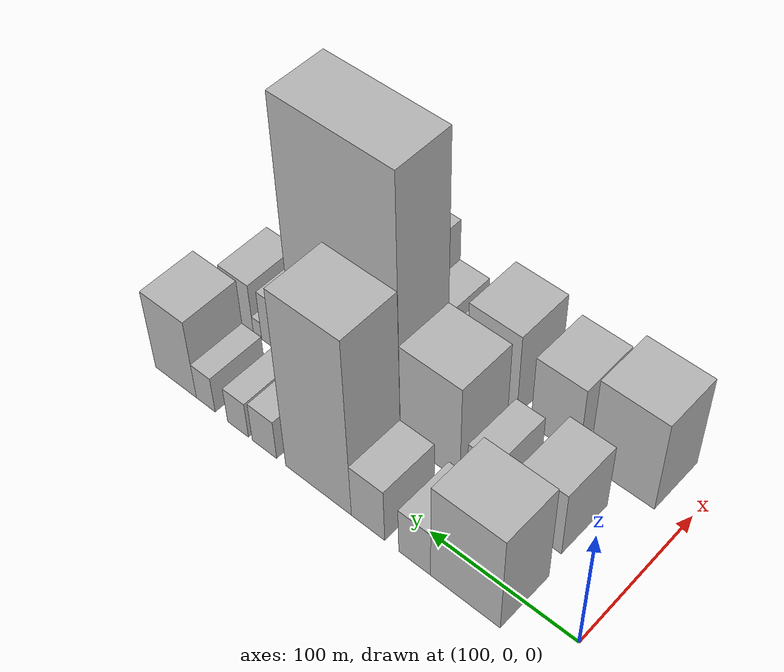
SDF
<sdf version="1.6">
 <world name="default">
  <model name="building_18">
   <static>1</static>
   <pose>100.0000 58.6374 0 0.000000 0.000000 0.000000</pose>
   <link name="link">
    <pose>0 0 40.50 0 0 0</pose>
    <collision name="collision"><geometry><box><size>40.0000 46.9235 81.0000</size></box></geometry></collision>
    <visual name="visual">
     <cast_shadows>0</cast_shadows>
     <geometry><box><size>40.0000 46.9235 81.0000</size></box></geometry>
     <material>
      <script>
       <uri>model://HANNAS_wall/materials/scripts</uri>
       <uri>model://HANNAS_wall/materials/textures</uri>
       <name>vrc/HANNAS_wall</name>
      </script>
     </material>
    </visual>
   </link>
  </model>
  <model name="building_19">
   <static>1</static>
   <pose>100.0000 93.1866 0 0.000000 0.000000 0.000000</pose>
   <link name="link">
    <pose>0 0 19.50 0 0 0</pose>
    <collision name="collision"><geometry><box><size>40.0000 22.1749 39.0000</size></box></geometry></collision>
    <visual name="visual">
     <cast_shadows>0</cast_shadows>
     <geometry><box><size>40.0000 22.1749 39.0000</size></box></geometry>
     <material>
      <script>
       <uri>model://HANNAS_wall/materials/scripts</uri>
       <uri>model://HANNAS_wall/materials/textures</uri>
       <name>vrc/HANNAS_wall</name>
      </script>
     </material>
    </visual>
   </link>
  </model>
  <model name="building_20">
   <static>1</static>
   <pose>100.0000 126.3091 0 0.000000 0.000000 0.000000</pose>
   <link name="link">
    <pose>0 0 22.50 0 0 0</pose>
    <collision name="collision"><geometry><box><size>40.0000 24.0701 45.0000</size></box></geometry></collision>
    <visual name="visual">
     <cast_shadows>0</cast_shadows>
     <geometry><box><size>40.0000 24.0701 45.0000</size></box></geometry>
     <material>
      <script>
       <uri>model://HANNAS_wall/materials/scripts</uri>
       <uri>model://HANNAS_wall/materials/textures</uri>
       <name>vrc/HANNAS_wall</name>
      </script>
     </material>
    </visual>
   </link>
  </model>
  <model name="building_21">
   <static>1</static>
   <pose>100.0000 162.9610 0 0.000000 0.000000 0.000000</pose>
   <link name="link">
    <pose>0 0 73.50 0 0 0</pose>
    <collision name="collision"><geometry><box><size>40.0000 49.2336 147.0000</size></box></geometry></collision>
    <visual name="visual">
     <cast_shadows>0</cast_shadows>
     <geometry><box><size>40.0000 49.2336 147.0000</size></box></geometry>
     <material>
      <script>
       <uri>model://HANNAS_wall/materials/scripts</uri>
       <uri>model://HANNAS_wall/materials/textures</uri>
       <name>vrc/HANNAS_wall</name>
      </script>
     </material>
    </visual>
   </link>
  </model>
  <model name="building_22">
   <static>1</static>
   <pose>100.0000 204.0887 0 0.000000 0.000000 0.000000</pose>
   <link name="link">
    <pose>0 0 16.50 0 0 0</pose>
    <collision name="collision"><geometry><box><size>40.0000 19.0217 33.0000</size></box></geometry></collision>
    <visual name="visual">
     <cast_shadows>0</cast_shadows>
     <geometry><box><size>40.0000 19.0217 33.0000</size></box></geometry>
     <material>
      <script>
       <uri>model://HANNAS_wall/materials/scripts</uri>
       <uri>model://HANNAS_wall/materials/textures</uri>
       <name>vrc/HANNAS_wall</name>
      </script>
     </material>
    </visual>
   </link>
  </model>
  <model name="building_23">
   <static>1</static>
   <pose>100.0000 224.9152 0 0.000000 0.000000 0.000000</pose>
   <link name="link">
    <pose>0 0 15.00 0 0 0</pose>
    <collision name="collision"><geometry><box><size>40.0000 16.6313 30.0000</size></box></geometry></collision>
    <visual name="visual">
     <cast_shadows>0</cast_shadows>
     <geometry><box><size>40.0000 16.6313 30.0000</size></box></geometry>
     <material>
      <script>
       <uri>model://HANNAS_wall/materials/scripts</uri>
       <uri>model://HANNAS_wall/materials/textures</uri>
       <name>vrc/HANNAS_wall</name>
      </script>
     </material>
    </visual>
   </link>
  </model>
  <model name="building_24">
   <static>1</static>
   <pose>100.0000 250.9024 0 0.000000 0.000000 0.000000</pose>
   <link name="link">
    <pose>0 0 15.00 0 0 0</pose>
    <collision name="collision"><geometry><box><size>40.0000 15.3431 30.0000</size></box></geometry></collision>
    <visual name="visual">
     <cast_shadows>0</cast_shadows>
     <geometry><box><size>40.0000 15.3431 30.0000</size></box></geometry>
     <material>
      <script>
       <uri>model://HANNAS_wall/materials/scripts</uri>
       <uri>model://HANNAS_wall/materials/textures</uri>
       <name>vrc/HANNAS_wall</name>
      </script>
     </material>
    </visual>
   </link>
  </model>
  <model name="building_25">
   <static>1</static>
   <pose>100.0000 275.6220 0 0.000000 0.000000 0.000000</pose>
   <link name="link">
    <pose>0 0 33.00 0 0 0</pose>
    <collision name="collision"><geometry><box><size>40.0000 34.0961 66.0000</size></box></geometry></collision>
    <visual name="visual">
     <cast_shadows>0</cast_shadows>
     <geometry><box><size>40.0000 34.0961 66.0000</size></box></geometry>
     <material>
      <script>
       <uri>model://HANNAS_wall/materials/scripts</uri>
       <uri>model://HANNAS_wall/materials/textures</uri>
       <name>vrc/HANNAS_wall</name>
      </script>
     </material>
    </visual>
   </link>
  </model>
  <model name="building_53">
   <static>1</static>
   <pose>155.0000 53.6636 0 0.000000 0.000000 0.000000</pose>
   <link name="link">
    <pose>0 0 27.00 0 0 0</pose>
    <collision name="collision"><geometry><box><size>40.0000 30.0741 54.0000</size></box></geometry></collision>
    <visual name="visual">
     <cast_shadows>0</cast_shadows>
     <geometry><box><size>40.0000 30.0741 54.0000</size></box></geometry>
     <material>
      <script>
       <uri>model://HANNAS_wall/materials/scripts</uri>
       <uri>model://HANNAS_wall/materials/textures</uri>
       <name>vrc/HANNAS_wall</name>
      </script>
     </material>
    </visual>
   </link>
  </model>
  <model name="building_54">
   <static>1</static>
   <pose>155.0000 72.2099 0 0.000000 0.000000 0.000000</pose>
   <link name="link">
    <pose>0 0 7.50 0 0 0</pose>
    <collision name="collision"><geometry><box><size>40.0000 7.0185 15.0000</size></box></geometry></collision>
    <visual name="visual">
     <cast_shadows>0</cast_shadows>
     <geometry><box><size>40.0000 7.0185 15.0000</size></box></geometry>
     <material>
      <script>
       <uri>model://HANNAS_wall/materials/scripts</uri>
       <uri>model://HANNAS_wall/materials/textures</uri>
       <name>vrc/HANNAS_wall</name>
      </script>
     </material>
    </visual>
   </link>
  </model>
  <model name="building_55">
   <static>1</static>
   <pose>155.0000 93.7455 0 0.000000 0.000000 0.000000</pose>
   <link name="link">
    <pose>0 0 19.50 0 0 0</pose>
    <collision name="collision"><geometry><box><size>40.0000 20.0527 39.0000</size></box></geometry></collision>
    <visual name="visual">
     <cast_shadows>0</cast_shadows>
     <geometry><box><size>40.0000 20.0527 39.0000</size></box></geometry>
     <material>
      <script>
       <uri>model://HANNAS_wall/materials/scripts</uri>
       <uri>model://HANNAS_wall/materials/textures</uri>
       <name>vrc/HANNAS_wall</name>
      </script>
     </material>
    </visual>
   </link>
  </model>
  <model name="building_56">
   <static>1</static>
   <pose>155.0000 130.4060 0 0.000000 0.000000 0.000000</pose>
   <link name="link">
    <pose>0 0 40.50 0 0 0</pose>
    <collision name="collision"><geometry><box><size>40.0000 43.2683 81.0000</size></box></geometry></collision>
    <visual name="visual">
     <cast_shadows>0</cast_shadows>
     <geometry><box><size>40.0000 43.2683 81.0000</size></box></geometry>
     <material>
      <script>
       <uri>model://HANNAS_wall/materials/scripts</uri>
       <uri>model://HANNAS_wall/materials/textures</uri>
       <name>vrc/HANNAS_wall</name>
      </script>
     </material>
    </visual>
   </link>
  </model>
  <model name="building_57">
   <static>1</static>
   <pose>155.0000 193.2940 0 0.000000 0.000000 0.000000</pose>
   <link name="link">
    <pose>0 0 103.50 0 0 0</pose>
    <collision name="collision"><geometry><box><size>40.0000 82.5079 207.0000</size></box></geometry></collision>
    <visual name="visual">
     <cast_shadows>0</cast_shadows>
     <geometry><box><size>40.0000 82.5079 207.0000</size></box></geometry>
     <material>
      <script>
       <uri>model://HANNAS_wall/materials/scripts</uri>
       <uri>model://HANNAS_wall/materials/textures</uri>
       <name>vrc/HANNAS_wall</name>
      </script>
     </material>
    </visual>
   </link>
  </model>
  <model name="building_58">
   <static>1</static>
   <pose>155.0000 249.3829 0 0.000000 0.000000 0.000000</pose>
   <link name="link">
    <pose>0 0 21.00 0 0 0</pose>
    <collision name="collision"><geometry><box><size>40.0000 23.6699 42.0000</size></box></geometry></collision>
    <visual name="visual">
     <cast_shadows>0</cast_shadows>
     <geometry><box><size>40.0000 23.6699 42.0000</size></box></geometry>
     <material>
      <script>
       <uri>model://HANNAS_wall/materials/scripts</uri>
       <uri>model://HANNAS_wall/materials/textures</uri>
       <name>vrc/HANNAS_wall</name>
      </script>
     </material>
    </visual>
   </link>
  </model>
  <model name="building_59">
   <static>1</static>
   <pose>155.0000 264.6367 0 0.000000 0.000000 0.000000</pose>
   <link name="link">
    <pose>0 0 7.50 0 0 0</pose>
    <collision name="collision"><geometry><box><size>40.0000 6.8378 15.0000</size></box></geometry></collision>
    <visual name="visual">
     <cast_shadows>0</cast_shadows>
     <geometry><box><size>40.0000 6.8378 15.0000</size></box></geometry>
     <material>
      <script>
       <uri>model://HANNAS_wall/materials/scripts</uri>
       <uri>model://HANNAS_wall/materials/textures</uri>
       <name>vrc/HANNAS_wall</name>
      </script>
     </material>
    </visual>
   </link>
  </model>
  <model name="building_60">
   <static>1</static>
   <pose>155.0000 280.1851 0 0.000000 0.000000 0.000000</pose>
   <link name="link">
    <pose>0 0 21.00 0 0 0</pose>
    <collision name="collision"><geometry><box><size>40.0000 24.2589 42.0000</size></box></geometry></collision>
    <visual name="visual">
     <cast_shadows>0</cast_shadows>
     <geometry><box><size>40.0000 24.2589 42.0000</size></box></geometry>
     <material>
      <script>
       <uri>model://HANNAS_wall/materials/scripts</uri>
       <uri>model://HANNAS_wall/materials/textures</uri>
       <name>vrc/HANNAS_wall</name>
      </script>
     </material>
    </visual>
   </link>
  </model>
  <model name="building_61">
   <static>1</static>
   <pose>155.0000 297.1424 0 0.000000 0.000000 0.000000</pose>
   <link name="link">
    <pose>0 0 12.00 0 0 0</pose>
    <collision name="collision"><geometry><box><size>40.0000 9.6558 24.0000</size></box></geometry></collision>
    <visual name="visual">
     <cast_shadows>0</cast_shadows>
     <geometry><box><size>40.0000 9.6558 24.0000</size></box></geometry>
     <material>
      <script>
       <uri>model://HANNAS_wall/materials/scripts</uri>
       <uri>model://HANNAS_wall/materials/textures</uri>
       <name>vrc/HANNAS_wall</name>
      </script>
     </material>
    </visual>
   </link>
  </model>
  <model name="building_87">
   <static>1</static>
   <pose>210.0000 40.2585 0 0.000000 0.000000 0.000000</pose>
   <link name="link">
    <pose>0 0 37.50 0 0 0</pose>
    <collision name="collision"><geometry><box><size>40.0000 44.3116 75.0000</size></box></geometry></collision>
    <visual name="visual">
     <cast_shadows>0</cast_shadows>
     <geometry><box><size>40.0000 44.3116 75.0000</size></box></geometry>
     <material>
      <script>
       <uri>model://HANNAS_wall/materials/scripts</uri>
       <uri>model://HANNAS_wall/materials/textures</uri>
       <name>vrc/HANNAS_wall</name>
      </script>
     </material>
    </visual>
   </link>
  </model>
  <model name="building_88">
   <static>1</static>
   <pose>210.0000 65.8153 0 0.000000 0.000000 0.000000</pose>
   <link name="link">
    <pose>0 0 7.50 0 0 0</pose>
    <collision name="collision"><geometry><box><size>40.0000 6.8019 15.0000</size></box></geometry></collision>
    <visual name="visual">
     <cast_shadows>0</cast_shadows>
     <geometry><box><size>40.0000 6.8019 15.0000</size></box></geometry>
     <material>
      <script>
       <uri>model://HANNAS_wall/materials/scripts</uri>
       <uri>model://HANNAS_wall/materials/textures</uri>
       <name>vrc/HANNAS_wall</name>
      </script>
     </material>
    </visual>
   </link>
  </model>
  <model name="building_89">
   <static>1</static>
   <pose>210.0000 86.2538 0 0.000000 0.000000 0.000000</pose>
   <link name="link">
    <pose>0 0 30.00 0 0 0</pose>
    <collision name="collision"><geometry><box><size>40.0000 34.0750 60.0000</size></box></geometry></collision>
    <visual name="visual">
     <cast_shadows>0</cast_shadows>
     <geometry><box><size>40.0000 34.0750 60.0000</size></box></geometry>
     <material>
      <script>
       <uri>model://HANNAS_wall/materials/scripts</uri>
       <uri>model://HANNAS_wall/materials/textures</uri>
       <name>vrc/HANNAS_wall</name>
      </script>
     </material>
    </visual>
   </link>
  </model>
  <model name="building_90">
   <static>1</static>
   <pose>210.0000 131.7699 0 0.000000 0.000000 0.000000</pose>
   <link name="link">
    <pose>0 0 34.50 0 0 0</pose>
    <collision name="collision"><geometry><box><size>40.0000 36.9573 69.0000</size></box></geometry></collision>
    <visual name="visual">
     <cast_shadows>0</cast_shadows>
     <geometry><box><size>40.0000 36.9573 69.0000</size></box></geometry>
     <material>
      <script>
       <uri>model://HANNAS_wall/materials/scripts</uri>
       <uri>model://HANNAS_wall/materials/textures</uri>
       <name>vrc/HANNAS_wall</name>
      </script>
     </material>
    </visual>
   </link>
  </model>
  <model name="building_91">
   <static>1</static>
   <pose>210.0000 159.0767 0 0.000000 0.000000 0.000000</pose>
   <link name="link">
    <pose>0 0 15.00 0 0 0</pose>
    <collision name="collision"><geometry><box><size>40.0000 17.6562 30.0000</size></box></geometry></collision>
    <visual name="visual">
     <cast_shadows>0</cast_shadows>
     <geometry><box><size>40.0000 17.6562 30.0000</size></box></geometry>
     <material>
      <script>
       <uri>model://HANNAS_wall/materials/scripts</uri>
       <uri>model://HANNAS_wall/materials/textures</uri>
       <name>vrc/HANNAS_wall</name>
      </script>
     </material>
    </visual>
   </link>
  </model>
  <model name="building_92">
   <static>1</static>
   <pose>210.0000 178.9421 0 0.000000 0.000000 0.000000</pose>
   <link name="link">
    <pose>0 0 21.00 0 0 0</pose>
    <collision name="collision"><geometry><box><size>40.0000 22.0746 42.0000</size></box></geometry></collision>
    <visual name="visual">
     <cast_shadows>0</cast_shadows>
     <geometry><box><size>40.0000 22.0746 42.0000</size></box></geometry>
     <material>
      <script>
       <uri>model://HANNAS_wall/materials/scripts</uri>
       <uri>model://HANNAS_wall/materials/textures</uri>
       <name>vrc/HANNAS_wall</name>
      </script>
     </material>
    </visual>
   </link>
  </model>
  <model name="building_93">
   <static>1</static>
   <pose>210.0000 209.7991 0 0.000000 0.000000 0.000000</pose>
   <link name="link">
    <pose>0 0 37.50 0 0 0</pose>
    <collision name="collision"><geometry><box><size>40.0000 39.6394 75.0000</size></box></geometry></collision>
    <visual name="visual">
     <cast_shadows>0</cast_shadows>
     <geometry><box><size>40.0000 39.6394 75.0000</size></box></geometry>
     <material>
      <script>
       <uri>model://HANNAS_wall/materials/scripts</uri>
       <uri>model://HANNAS_wall/materials/textures</uri>
       <name>vrc/HANNAS_wall</name>
      </script>
     </material>
    </visual>
   </link>
  </model>
  <model name="building_94">
   <static>1</static>
   <pose>210.0000 254.3236 0 0.000000 0.000000 0.000000</pose>
   <link name="link">
    <pose>0 0 25.50 0 0 0</pose>
    <collision name="collision"><geometry><box><size>40.0000 29.4095 51.0000</size></box></geometry></collision>
    <visual name="visual">
     <cast_shadows>0</cast_shadows>
     <geometry><box><size>40.0000 29.4095 51.0000</size></box></geometry>
     <material>
      <script>
       <uri>model://HANNAS_wall/materials/scripts</uri>
       <uri>model://HANNAS_wall/materials/textures</uri>
       <name>vrc/HANNAS_wall</name>
      </script>
     </material>
    </visual>
   </link>
  </model>
  <model name="building_95">
   <static>1</static>
   <pose>210.0000 278.9243 0 0.000000 0.000000 0.000000</pose>
   <link name="link">
    <pose>0 0 16.50 0 0 0</pose>
    <collision name="collision"><geometry><box><size>40.0000 19.7920 33.0000</size></box></geometry></collision>
    <visual name="visual">
     <cast_shadows>0</cast_shadows>
     <geometry><box><size>40.0000 19.7920 33.0000</size></box></geometry>
     <material>
      <script>
       <uri>model://HANNAS_wall/materials/scripts</uri>
       <uri>model://HANNAS_wall/materials/textures</uri>
       <name>vrc/HANNAS_wall</name>
      </script>
     </material>
    </visual>
   </link>
  </model>
 </world>
</sdf>
